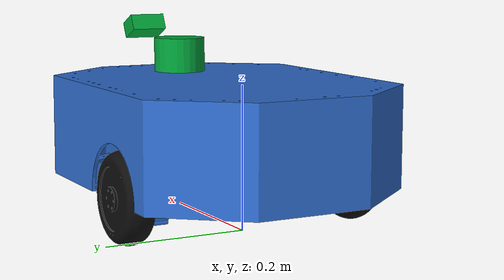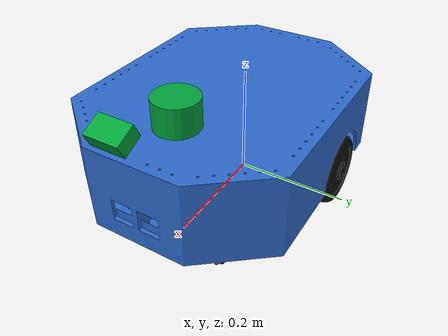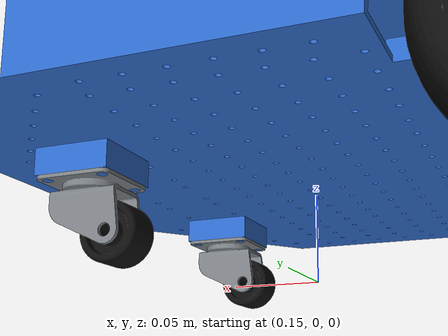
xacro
<?xml version="1.0"?>
<robot xmlns:xacro="http://www.ros.org/wiki/xacro" name="nino">
  <xacro:arg
    name="controllers_file"
    default="$(find nino_control)/config/controllers.yaml"/>
  <xacro:arg name="contact_lab" default="false"/>
  <xacro:arg name="terrain_preview" default="true"/>
  <xacro:arg name="caster_wheel_damping" default="0.01"/>

  <!-- Dimensions measured from the supplied SolidWorks STL export. -->
  <xacro:property name="drive_wheel_radius" value="0.0625"/>
  <xacro:property name="drive_wheel_width" value="0.047"/>
  <xacro:property name="drive_wheel_joint_y" value="0.1935"/>
  <!-- Contact-centre separation: 2 * (0.1935 - 0.02213167). -->
  <xacro:property name="drive_wheel_separation" value="0.34273666"/>
  <xacro:property name="caster_radius" value="0.016"/>
  <xacro:property name="caster_width" value="0.021"/>

  <material name="chassis_blue">
    <color rgba="0.18 0.42 0.80 1.0"/>
  </material>
  <material name="wheel_black">
    <color rgba="0.05 0.05 0.05 1.0"/>
  </material>
  <material name="metal_grey">
    <color rgba="0.48 0.50 0.52 1.0"/>
  </material>

  <link name="base_footprint"/>

  <link name="base_link">
    <inertial>
      <!-- CAD center of mass and moments scaled to a 2.5 kg chassis;
           lateral COM and cross-products stay symmetric. -->
      <origin xyz="0.0592774512 0 0.0848297985" rpy="0 0 0"/>
      <mass value="2.5"/>
      <inertia
        ixx="0.0195929757" ixy="0" ixz="-0.0002725076"
        iyy="0.0323802641" iyz="0"
        izz="0.0489682473"/>
    </inertial>
    <visual>
      <geometry>
        <mesh filename="package://nino_description/meshes/base_link.STL"/>
      </geometry>
      <material name="chassis_blue"/>
    </visual>
    <!-- Use the CAD chassis in the identical frame for exact visual/collision
         alignment. Do not add an origin offset or an independent scale here. -->
    <collision>
      <geometry>
        <mesh filename="package://nino_description/meshes/base_link.STL"/>
      </geometry>
    </collision>
  </link>

  <joint name="base_footprint_joint" type="fixed">
    <parent link="base_footprint"/>
    <child link="base_link"/>
    <origin xyz="0 0 ${drive_wheel_radius}" rpy="0 0 0"/>
  </joint>

  <!--
    Sensor names and topics intentionally match Linorobot2 Jazzy:
      imu_link -> /imu/data
      laser    -> /scan
    Their fixed joints are published by robot_state_publisher.
  -->
  <link name="imu_link"/>
  <joint name="imu_to_base_link" type="fixed">
    <parent link="base_link"/>
    <child link="imu_link"/>
    <origin xyz="0.05 0 0.10" rpy="0 0 0"/>
  </joint>

  <link name="laser">
    <inertial>
      <origin xyz="0 0 0" rpy="0 0 0"/>
      <mass value="1.3"/>
      <!-- Solid-cylinder inertia for radius 0.0375 m and height 0.05 m. -->
      <inertia ixx="0.000727864583" ixy="0" ixz="0"
               iyy="0.000727864583" iyz="0" izz="0.0009140625"/>
    </inertial>
    <visual>
      <geometry>
        <cylinder radius="0.0375" length="0.05"/>
      </geometry>
      <material name="sensor_green">
        <color rgba="0.003 0.639 0.223 1.0"/>
      </material>
    </visual>
    <collision>
      <geometry>
        <cylinder radius="0.0375" length="0.05"/>
      </geometry>
    </collision>
  </link>
  <joint name="laser_to_base_link" type="fixed">
    <parent link="base_link"/>
    <child link="laser"/>
    <!-- Center of the four-hole top-plate pattern (x=0.1725/0.2275,
         y=+/-0.015); the cylinder bottom sits on the z=0.14 plate. -->
    <origin xyz="0.20 0 0.165" rpy="0 0 0"/>
  </joint>

  <link name="terrain_laser">
    <visual>
      <geometry><box size="0.035 0.055 0.025"/></geometry>
      <material name="sensor_green"/>
    </visual>
  </link>
  <joint name="terrain_laser_to_base_link" type="fixed">
    <parent link="base_link"/>
    <child link="terrain_laser"/>
    <origin xyz="0.33 0 0.20" rpy="0 0.45 0"/>
  </joint>

  <xacro:if value="$(arg terrain_preview)">
  <gazebo reference="terrain_laser">
    <sensor name="terrain_preview_sensor" type="gpu_lidar">
      <topic>terrain_scan</topic>
      <update_rate>20</update_rate>
      <always_on>true</always_on>
      <visualize>false</visualize>
      <lidar>
        <!-- Bit 0x04 is reserved for training GUI decorations. -->
        <visibility_mask>4294967291</visibility_mask>
        <scan>
          <horizontal>
            <samples>31</samples>
            <resolution>1</resolution>
            <min_angle>-0.35</min_angle>
            <max_angle>0.35</max_angle>
          </horizontal>
          <vertical>
            <samples>1</samples>
            <resolution>1</resolution>
            <min_angle>0</min_angle>
            <max_angle>0</max_angle>
          </vertical>
        </scan>
        <range>
          <min>0.05</min>
          <max>2.0</max>
          <resolution>0.002</resolution>
        </range>
        <noise>
          <type>gaussian</type>
          <mean>0</mean>
          <stddev>0.002</stddev>
        </noise>
      </lidar>
    </sensor>
  </gazebo>
  </xacro:if>

  <gazebo>
    <plugin filename="gz-sim-imu-system" name="gz::sim::systems::Imu"/>
    <plugin filename="gz-sim-sensors-system" name="gz::sim::systems::Sensors">
      <render_engine>ogre2</render_engine>
    </plugin>
    <!-- Ground-truth velocity is used only to measure simulated wheel slip;
         it is never used for localization or direct control. -->
    <plugin filename="gz-sim-odometry-publisher-system"
            name="gz::sim::systems::OdometryPublisher">
      <odom_frame>world</odom_frame>
      <robot_base_frame>base_footprint</robot_base_frame>
      <xacro:if value="$(arg contact_lab)"><dimensions>3</dimensions></xacro:if>
      <odom_publish_frequency>50</odom_publish_frequency>
      <odom_topic>/model/nino/odometry</odom_topic>
    </plugin>
  </gazebo>

  <gazebo reference="imu_link">
    <sensor name="imu_sensor" type="imu">
      <topic>imu/data</topic>
      <update_rate>50</update_rate>
      <always_on>true</always_on>
      <visualize>false</visualize>
      <imu>
        <angular_velocity>
          <x><noise type="gaussian"><mean>0</mean><stddev>0.0002</stddev></noise></x>
          <y><noise type="gaussian"><mean>0</mean><stddev>0.0002</stddev></noise></y>
          <z><noise type="gaussian"><mean>0</mean><stddev>0.0002</stddev></noise></z>
        </angular_velocity>
        <linear_acceleration>
          <x><noise type="gaussian"><mean>0</mean><stddev>0.017</stddev></noise></x>
          <y><noise type="gaussian"><mean>0</mean><stddev>0.017</stddev></noise></y>
          <z><noise type="gaussian"><mean>0</mean><stddev>0.017</stddev></noise></z>
        </linear_acceleration>
      </imu>
    </sensor>
  </gazebo>

  <gazebo reference="laser">
    <sensor name="gpu_lidar" type="gpu_lidar">
      <topic>scan</topic>
      <update_rate>10</update_rate>
      <always_on>true</always_on>
      <visualize>true</visualize>
      <lidar>
        <!-- Goal beacon is visible in the GUI, never a laser obstacle. -->
        <visibility_mask>4294967291</visibility_mask>
        <scan>
          <horizontal>
            <samples>360</samples>
            <resolution>1</resolution>
            <min_angle>-${pi}</min_angle>
            <max_angle>${pi}</max_angle>
          </horizontal>
          <vertical>
            <samples>1</samples>
            <resolution>1</resolution>
            <min_angle>0</min_angle>
            <max_angle>0</max_angle>
          </vertical>
        </scan>
        <range>
          <min>0.08</min>
          <max>12.0</max>
          <resolution>0.01</resolution>
        </range>
        <noise>
          <type>gaussian</type>
          <mean>0</mean>
          <stddev>0.005</stddev>
        </noise>
      </lidar>
    </sensor>
  </gazebo>

  <xacro:macro name="drive_wheel" params="side y mesh com_z collision_z">
    <link name="${side}_wheel_link">
      <inertial>
        <origin xyz="0 0 ${com_z}" rpy="0 0 0"/>
        <!-- Keep the CAD inertia ratios when increasing each wheel to 0.8 kg. -->
        <mass value="0.8"/>
        <inertia
          ixx="0.00082103250" ixy="0" ixz="0"
          iyy="0.00082103250" iyz="0"
          izz="0.00145127478"/>
      </inertial>
      <visual>
        <geometry>
          <mesh filename="package://nino_description/meshes/${mesh}"/>
        </geometry>
        <material name="wheel_black"/>
      </visual>
      <collision>
        <origin xyz="0 0 ${collision_z}" rpy="0 0 0"/>
        <geometry>
          <cylinder radius="${drive_wheel_radius}" length="${drive_wheel_width}"/>
        </geometry>
      </collision>
    </link>

    <joint name="${side}_wheel_joint" type="continuous">
      <origin xyz="0 ${y} 0" rpy="${pi / 2} 0 0"/>
      <parent link="base_link"/>
      <child link="${side}_wheel_link"/>
      <!-- -Z in the rotated joint frame is +Y in the robot frame. -->
      <axis xyz="0 0 -1"/>
      <!-- 24 rad/s is the emergency joint limit.  The effort controller uses
           a 12 rad/s software limit, leaving transient feedback margin. -->
      <limit effort="12.0" velocity="24.0"/>
      <dynamics damping="0.02" friction="0.0"/>
    </joint>
  </xacro:macro>

  <xacro:drive_wheel
    side="left" y="${drive_wheel_joint_y}"
    mesh="left_wheel_link.STL" com_z="0.0221316704" collision_z="0.0235"/>
  <xacro:drive_wheel
    side="right" y="${-drive_wheel_joint_y}"
    mesh="right_wheel_link.STL" com_z="-0.0221316704" collision_z="-0.0235"/>

  <xacro:macro name="caster" params="index y">
    <link name="caster_bracket_${index}_link">
      <inertial>
        <origin xyz="-0.0016273079 0 -0.0041294433" rpy="0 0 0"/>
        <mass value="0.0821604275"/>
        <inertia
          ixx="0.00001115258" ixy="0" ixz="-0.00000082020"
          iyy="0.00001170793" iyz="0"
          izz="0.00001777544"/>
      </inertial>
      <visual>
        <geometry>
          <mesh filename="package://nino_description/meshes/caster_bracket_front1.STL"/>
        </geometry>
        <material name="metal_grey"/>
      </visual>
      <collision>
        <geometry>
          <!-- Use the same geometry and frame as the visual.  The previous
               solid cylinder filled the open caster fork and extended into
               the cable before the caster wheel reached it. -->
          <mesh filename="package://nino_description/meshes/caster_bracket_front1.STL"/>
        </geometry>
      </collision>
    </link>

    <joint name="caster_${index}_swivel_joint" type="continuous">
      <origin xyz="0.24362 ${y} -0.0215" rpy="0 0 0"/>
      <parent link="base_link"/>
      <child link="caster_bracket_${index}_link"/>
      <axis xyz="0 0 1"/>
      <limit effort="2.0" velocity="20.0"/>
      <dynamics damping="0.08" friction="0.01"/>
    </joint>

    <link name="caster_${index}_wheel_link">
      <inertial>
        <origin xyz="0 0 0" rpy="0 0 0"/>
        <mass value="0.0131302038"/>
        <inertia
          ixx="0.00000131770" ixy="0" ixz="0"
          iyy="0.00000131770" iyz="0"
          izz="0.00000189555"/>
      </inertial>
      <visual>
        <geometry>
          <!-- The supplied front2 STL is empty, so both identical caster
               assemblies intentionally use the valid front1 wheel mesh. -->
          <mesh filename="package://nino_description/meshes/caster_wheel_front.STL"/>
        </geometry>
        <material name="wheel_black"/>
      </visual>
      <collision>
        <geometry>
          <cylinder radius="${caster_radius}" length="${caster_width}"/>
        </geometry>
      </collision>
    </link>

    <joint name="caster_${index}_wheel_joint" type="continuous">
      <origin xyz="-0.016 0 -0.025" rpy="${pi / 2} 0 0"/>
      <parent link="caster_bracket_${index}_link"/>
      <child link="caster_${index}_wheel_link"/>
      <axis xyz="0 0 -1"/>
      <limit effort="1.0" velocity="30.0"/>
      <dynamics damping="$(arg caster_wheel_damping)" friction="0.0"/>
    </joint>
  </xacro:macro>

  <xacro:caster index="left" y="0.088"/>
  <xacro:caster index="right" y="-0.088"/>

  <!-- Research-only contact oracle: never connected to deployed governor. -->
  <xacro:macro name="contact_logger_sensor" params="component link:='' collision:=''">
    <gazebo reference="${link if link else component+'_link'}">
      <sensor name="${component}_contact" type="contact">
        <always_on>true</always_on>
        <update_rate>100</update_rate>
        <contact>
          <collision>${collision if collision else component+'_link_collision'}</collision>
          <topic>/nino/contact_lab/${component}</topic>
        </contact>
      </sensor>
    </gazebo>
  </xacro:macro>
  <xacro:if value="$(arg contact_lab)">
    <xacro:contact_logger_sensor component="left_wheel"/>
    <xacro:contact_logger_sensor component="right_wheel"/>
    <xacro:contact_logger_sensor component="caster_left_wheel"/>
    <xacro:contact_logger_sensor component="caster_right_wheel"/>
    <xacro:contact_logger_sensor component="caster_bracket_left"/>
    <xacro:contact_logger_sensor component="caster_bracket_right"/>
    <xacro:contact_logger_sensor component="chassis" link="base_footprint"
      collision="base_footprint_fixed_joint_lump__base_link_collision"/>
  </xacro:if>

  <!-- Identical contact parameters on the left and right prevent artificial
       yaw.  Caster friction is lower so the swivels align without scrubbing. -->
  <gazebo reference="left_wheel_link">
    <mu1>1.2</mu1>
    <mu2>1.2</mu2>
    <kp>1000000</kp>
    <kd>10</kd>
  </gazebo>
  <gazebo reference="right_wheel_link">
    <mu1>1.2</mu1>
    <mu2>1.2</mu2>
    <kp>1000000</kp>
    <kd>10</kd>
  </gazebo>
  <gazebo reference="caster_left_wheel_link">
    <mu1>0.35</mu1>
    <mu2>0.35</mu2>
  </gazebo>
  <gazebo reference="caster_right_wheel_link">
    <mu1>0.35</mu1>
    <mu2>0.35</mu2>
  </gazebo>

  <ros2_control name="GazeboSimSystem" type="system">
    <hardware>
      <plugin>gz_ros2_control/GazeboSimSystem</plugin>
    </hardware>

    <joint name="left_wheel_joint">
      <command_interface name="effort">
        <param name="min">-12.0</param>
        <param name="max">12.0</param>
      </command_interface>
      <state_interface name="position"/>
      <state_interface name="velocity"/>
      <state_interface name="effort"/>
    </joint>

    <joint name="right_wheel_joint">
      <command_interface name="effort">
        <param name="min">-12.0</param>
        <param name="max">12.0</param>
      </command_interface>
      <state_interface name="position"/>
      <state_interface name="velocity"/>
      <state_interface name="effort"/>
    </joint>

    <!-- Register the Gazebo IMU with ros2_control as well. This keeps the
         hardware model complete; /imu/data is still published by ros_gz_bridge. -->
    <sensor name="imu_sensor">
      <state_interface name="orientation.x"/>
      <state_interface name="orientation.y"/>
      <state_interface name="orientation.z"/>
      <state_interface name="orientation.w"/>
      <state_interface name="angular_velocity.x"/>
      <state_interface name="angular_velocity.y"/>
      <state_interface name="angular_velocity.z"/>
      <state_interface name="linear_acceleration.x"/>
      <state_interface name="linear_acceleration.y"/>
      <state_interface name="linear_acceleration.z"/>
    </sensor>

    <!-- Passive caster joints are exported for complete /joint_states. -->
    <joint name="caster_left_swivel_joint">
      <state_interface name="position"/>
      <state_interface name="velocity"/>
    </joint>
    <joint name="caster_left_wheel_joint">
      <state_interface name="position"/>
      <state_interface name="velocity"/>
    </joint>
    <joint name="caster_right_swivel_joint">
      <state_interface name="position"/>
      <state_interface name="velocity"/>
    </joint>
    <joint name="caster_right_wheel_joint">
      <state_interface name="position"/>
      <state_interface name="velocity"/>
    </joint>
  </ros2_control>

  <gazebo>
    <plugin filename="libgz_ros2_control-system.so"
            name="gz_ros2_control::GazeboSimROS2ControlPlugin">
      <parameters>$(arg controllers_file)</parameters>
    </plugin>
  </gazebo>
</robot>
